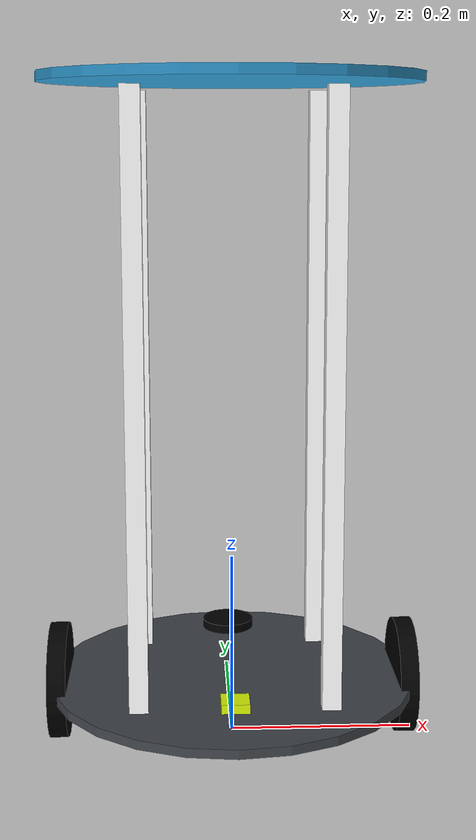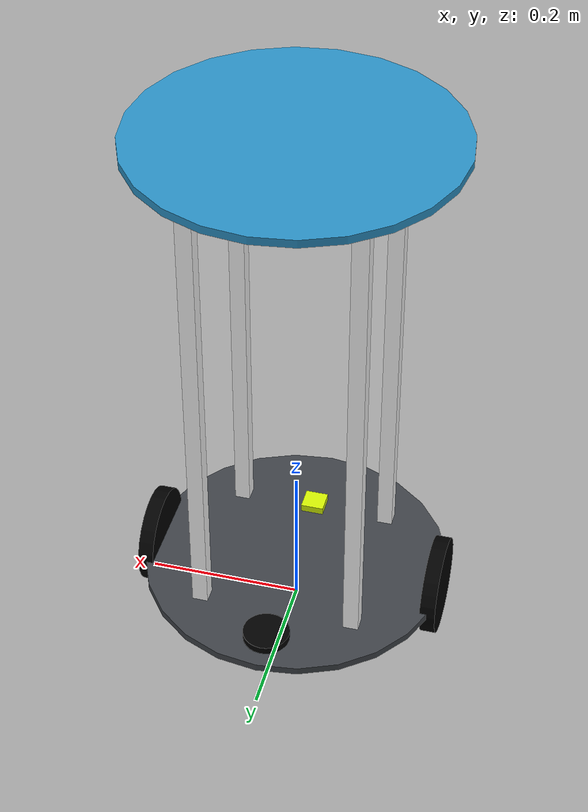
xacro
<?xml version="1.0"?>
<robot name="robot" xmlns:xacro="http://ros.org/wiki/xacro">
  <!-- Base footprint -->
  <link name="base_footprint" />

  <joint name="base_joint" type="fixed">
    <parent link="base_footprint" />
    <child link="base_link" />
    <origin xyz="0 0 0.062" rpy="0 0 0" />
  </joint>

  <link name="base_link">
    <visual>
      <origin xyz="0 0 0" rpy="0 0 0" />
      <geometry>
        <cylinder radius="0.2" length="0.01" />
      </geometry>
      <material name="base_link_material">
        <color rgba="0.246 0.262 0.283 1" />
      </material>
    </visual>
    <collision>
      <origin xyz="0 0 0" rpy="0 0 0" />
      <geometry>
        <cylinder radius="0.2" length="0.01" />
      </geometry>
    </collision>
    <inertial>
      <origin xyz="0 0 0" rpy="0 0 0" />
      <mass value="0.1" />
      <inertia ixx="0.001" ixy="0" ixz="0" iyy="0.001" iyz="0" izz="0.001" />
    </inertial>
  </link>

  <xacro:macro name="add_box_pillar" params="name x y z">
    <joint name="base_link_to_${name}" type="fixed">
      <parent link="base_link" />
      <child link="${name}" />
      <origin xyz="${x} ${y} ${z}" rpy="0 0 0" />
    </joint>
    <link name="${name}">
      <visual>
        <origin xyz="0 0 0" rpy="0 0 0" />
        <geometry>
          <box size="0.02 0.02 0.64" />
        </geometry>
        <material name="${name}_material">
          <color rgba="1 1 1 1" />
        </material>
      </visual>
    </link>
  </xacro:macro>

  <!-- IMU -->
  <joint name="base_link_to_imu" type="fixed">
    <parent link="base_link" />
    <child link="imu" />
    <origin xyz="0 -0.1 0.01" rpy="0 0 0" />
  </joint>
  <link name="imu">
    <visual>
      <origin xyz="0 0 0" rpy="0 0 0" />
      <geometry>
        <box size="0.03 0.03 0.01" />
      </geometry>
      <material name="imu_material">
        <color rgba="0.84 0.96 0.01 1" />
      </material>
    </visual>
  </link>

  <!-- Radar -->
  <joint name="base_link_to_radar" type="fixed">
    <parent link="base_link" />
    <child link="radar" />
    <origin xyz="0 0.15 0" rpy="0 0 0" />
  </joint>
  <link name="radar">
    <visual>
      <origin xyz="0 0 0" rpy="0 0 0" />
      <geometry>
        <cylinder radius="0.03" length="0.03" />
      </geometry>
      <material name="radar_material">
        <color rgba="0 0 0 1" />
      </material>
    </visual>
  </link>

  <!-- Wheels -->
  <xacro:macro name="wheel" params="side x">
    <joint name="base_link_to_${side}_wheel" type="continuous">
      <parent link="base_link" />
      <child link="${side}_wheel" />
      <origin xyz="${x} 0 0" rpy="0 -1.57 0" />
      <axis xyz="0 0 1" />
    </joint>
    <link name="${side}_wheel">
      <visual>
        <origin xyz="0 0 0" rpy="0 0 0" />
        <geometry>
          <cylinder radius="0.063" length="0.02" />
        </geometry>
        <material name="${side}_wheel_material">
          <color rgba="0 0 0 1" />
        </material>
      </visual>
    </link>
  </xacro:macro>

  <xacro:wheel side="left" x="-0.19"/>
  <xacro:wheel side="right" x="0.19"/>

  <!-- Top Plate -->
  <joint name="base_link_to_top" type="fixed">
    <parent link="base_link" />
    <child link="top" />
    <origin xyz="0 0 0.65" rpy="0 0 0" />
  </joint>
  <link name="top">
    <visual>
      <origin xyz="0 0 0" rpy="0 0 0" />
      <geometry>
        <cylinder radius="0.2" length="0.01" />
      </geometry>
      <material name="top_material">
        <color rgba="0.168 0.571 0.776 1" />
      </material>
    </visual>
  </link>

  <!-- Pillars -->
  <xacro:add_box_pillar name="pillar1" x="0.1" y="0.1" z="0.32"/>
  <xacro:add_box_pillar name="pillar2" x="-0.1" y="0.1" z="0.32"/>
  <xacro:add_box_pillar name="pillar3" x="0.1" y="-0.1" z="0.32"/>
  <xacro:add_box_pillar name="pillar4" x="-0.1" y="-0.1" z="0.32"/>
</robot>
